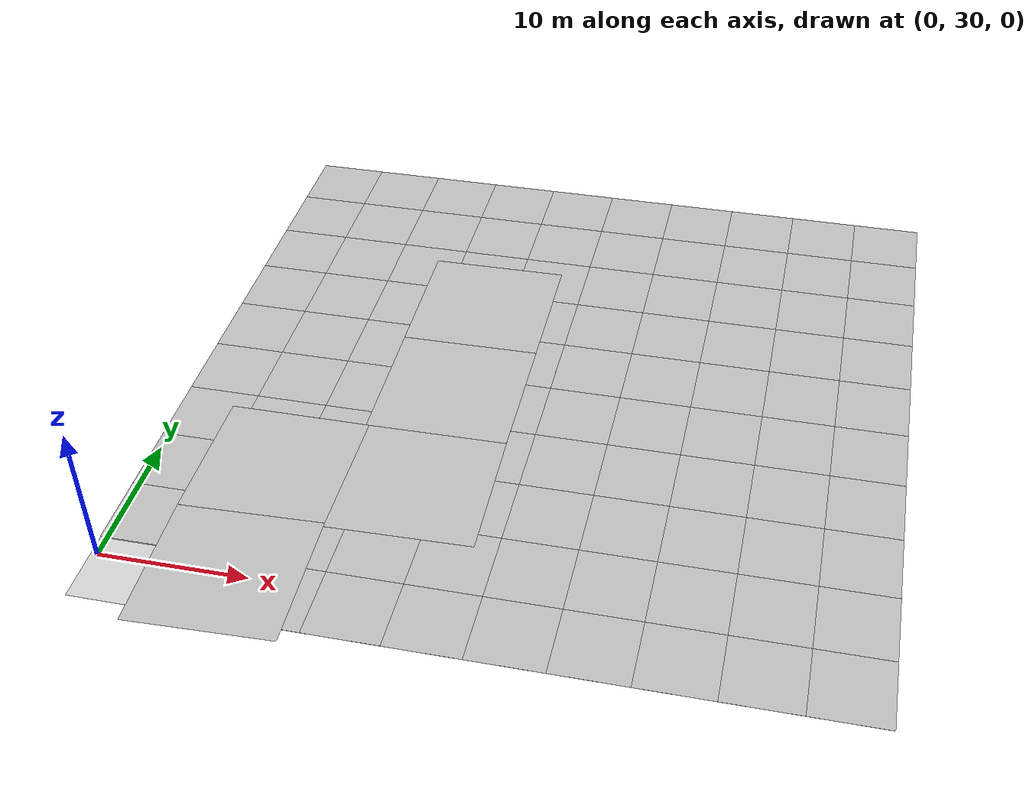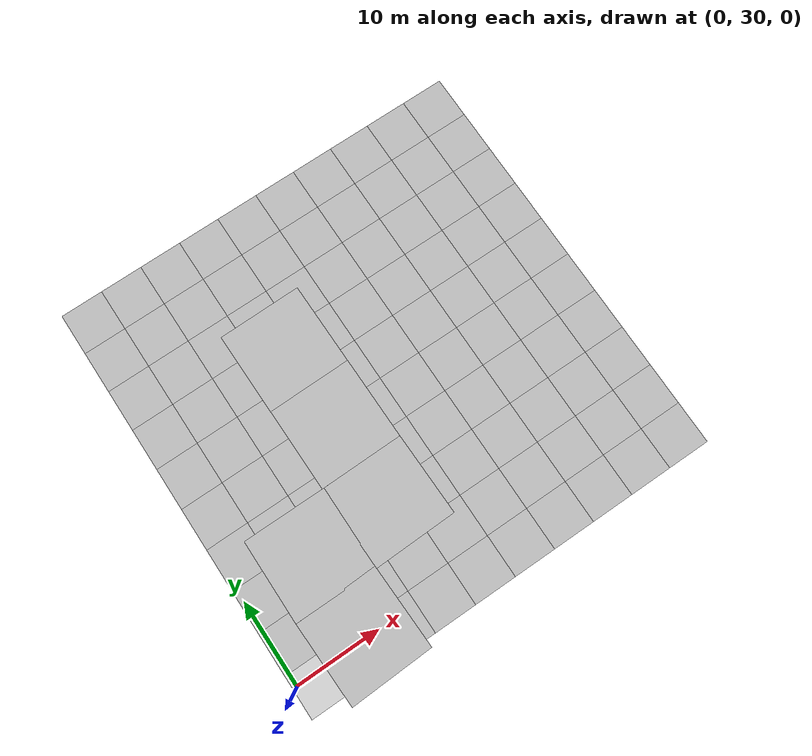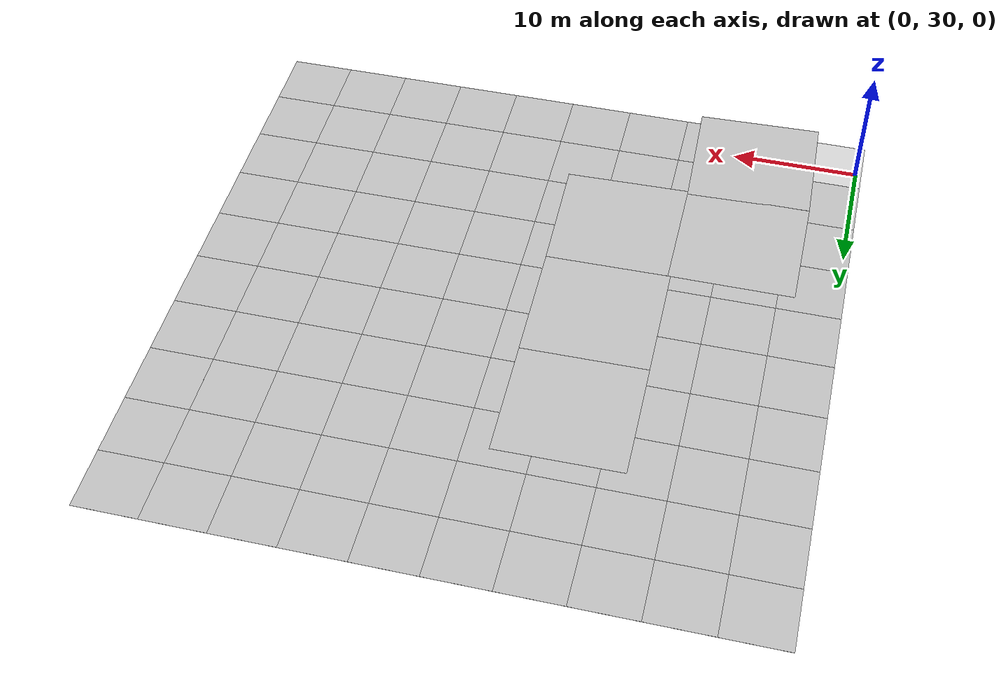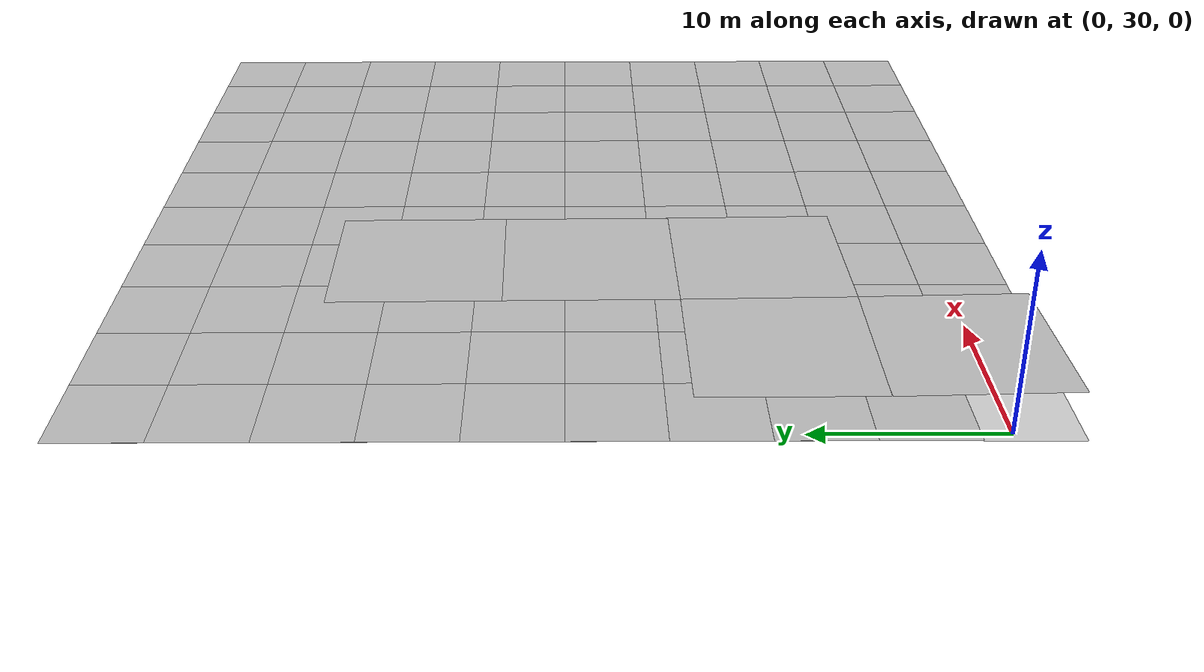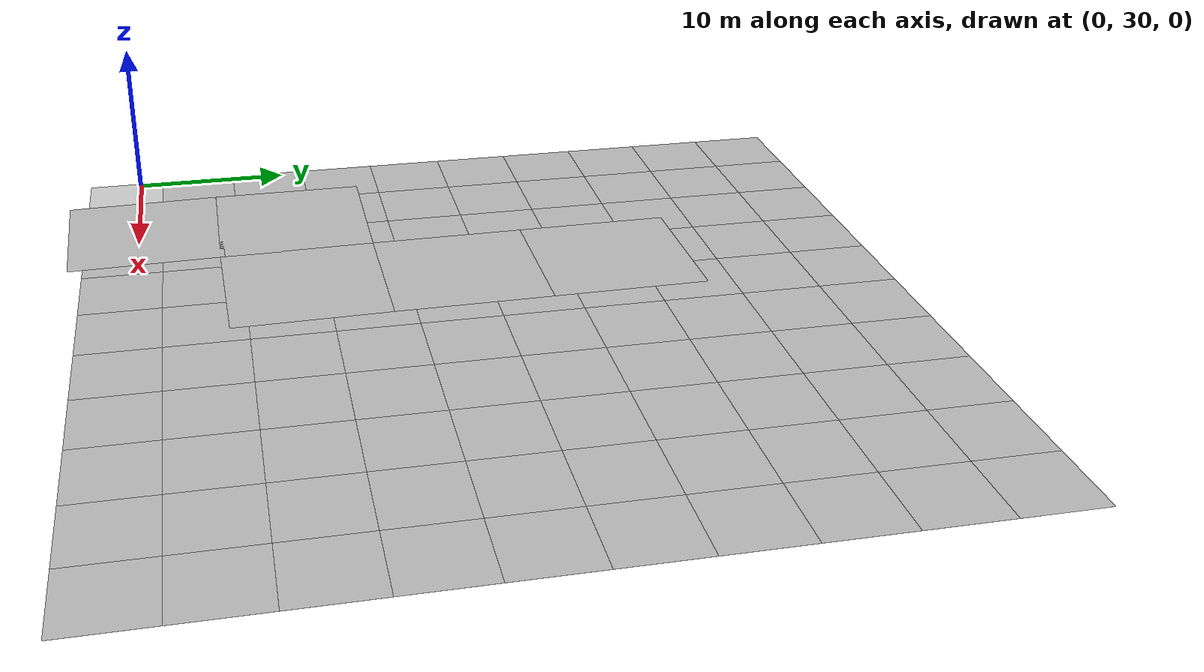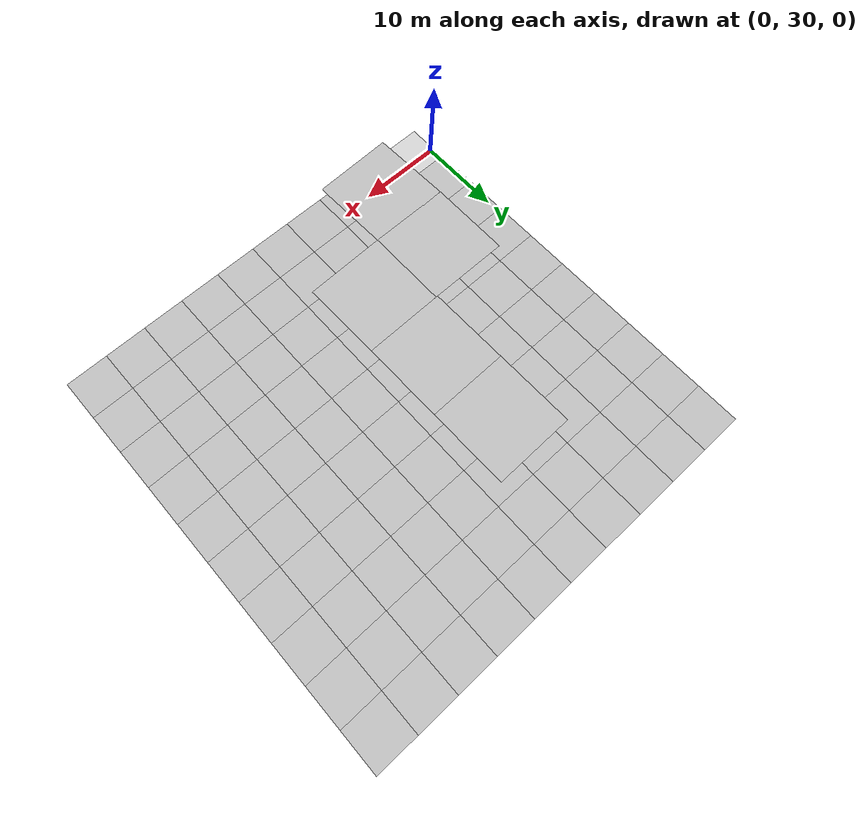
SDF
<sdf version="1.4">
 <world name="default">
  <model name="pavement_plane_4">
   <static>1</static>
   <link name="link">
    <collision name="collision">
     <geometry><plane><normal>0 0 1</normal><size>50 50</size></plane></geometry>
     <surface><friction><ode><mu>100</mu><mu2>50</mu2></ode></friction></surface>
    </collision>
    <visual name="visual_0">
     <pose>-25 -25 0 0 -0 0</pose>
     <cast_shadows>0</cast_shadows>
     <geometry><plane><normal>0 0 1</normal><size>5 5</size></plane></geometry>
     <material>
      <script>
       <uri>model://pavement_plane/materials/scripts</uri>
       <uri>model://pavement_plane/materials/textures</uri>
       <name>vrc/pavement</name>
      </script>
     </material>
    </visual>
    <visual name="visual_1">
     <pose>-20 -25 0 0 -0 0</pose>
     <cast_shadows>0</cast_shadows>
     <geometry><plane><normal>0 0 1</normal><size>5 5</size></plane></geometry>
     <material>
      <script>
       <uri>model://pavement_plane/materials/scripts</uri>
       <uri>model://pavement_plane/materials/textures</uri>
       <name>vrc/pavement</name>
      </script>
     </material>
    </visual>
    <visual name="visual_2">
     <pose>-15 -25 0 0 -0 0</pose>
     <cast_shadows>0</cast_shadows>
     <geometry><plane><normal>0 0 1</normal><size>5 5</size></plane></geometry>
     <material>
      <script>
       <uri>model://pavement_plane/materials/scripts</uri>
       <uri>model://pavement_plane/materials/textures</uri>
       <name>vrc/pavement</name>
      </script>
     </material>
    </visual>
    <visual name="visual_3">
     <pose>-10 -25 0 0 -0 0</pose>
     <cast_shadows>0</cast_shadows>
     <geometry><plane><normal>0 0 1</normal><size>5 5</size></plane></geometry>
     <material>
      <script>
       <uri>model://pavement_plane/materials/scripts</uri>
       <uri>model://pavement_plane/materials/textures</uri>
       <name>vrc/pavement</name>
      </script>
     </material>
    </visual>
    <visual name="visual_4">
     <pose>-5 -25 0 0 -0 0</pose>
     <cast_shadows>0</cast_shadows>
     <geometry><plane><normal>0 0 1</normal><size>5 5</size></plane></geometry>
     <material>
      <script>
       <uri>model://pavement_plane/materials/scripts</uri>
       <uri>model://pavement_plane/materials/textures</uri>
       <name>vrc/pavement</name>
      </script>
     </material>
    </visual>
    <visual name="visual_5">
     <pose>0 -25 0 0 -0 0</pose>
     <cast_shadows>0</cast_shadows>
     <geometry><plane><normal>0 0 1</normal><size>5 5</size></plane></geometry>
     <material>
      <script>
       <uri>model://pavement_plane/materials/scripts</uri>
       <uri>model://pavement_plane/materials/textures</uri>
       <name>vrc/pavement</name>
      </script>
     </material>
    </visual>
    <visual name="visual_6">
     <pose>5 -25 0 0 -0 0</pose>
     <cast_shadows>0</cast_shadows>
     <geometry><plane><normal>0 0 1</normal><size>5 5</size></plane></geometry>
     <material>
      <script>
       <uri>model://pavement_plane/materials/scripts</uri>
       <uri>model://pavement_plane/materials/textures</uri>
       <name>vrc/pavement</name>
      </script>
     </material>
    </visual>
    <visual name="visual_7">
     <pose>10 -25 0 0 -0 0</pose>
     <cast_shadows>0</cast_shadows>
     <geometry><plane><normal>0 0 1</normal><size>5 5</size></plane></geometry>
     <material>
      <script>
       <uri>model://pavement_plane/materials/scripts</uri>
       <uri>model://pavement_plane/materials/textures</uri>
       <name>vrc/pavement</name>
      </script>
     </material>
    </visual>
    <visual name="visual_8">
     <pose>15 -25 0 0 -0 0</pose>
     <cast_shadows>0</cast_shadows>
     <geometry><plane><normal>0 0 1</normal><size>5 5</size></plane></geometry>
     <material>
      <script>
       <uri>model://pavement_plane/materials/scripts</uri>
       <uri>model://pavement_plane/materials/textures</uri>
       <name>vrc/pavement</name>
      </script>
     </material>
    </visual>
    <visual name="visual_9">
     <pose>20 -25 0 0 -0 0</pose>
     <cast_shadows>0</cast_shadows>
     <geometry><plane><normal>0 0 1</normal><size>5 5</size></plane></geometry>
     <material>
      <script>
       <uri>model://pavement_plane/materials/scripts</uri>
       <uri>model://pavement_plane/materials/textures</uri>
       <name>vrc/pavement</name>
      </script>
     </material>
    </visual>
    <visual name="visual_10">
     <pose>-25 -20 0 0 -0 0</pose>
     <cast_shadows>0</cast_shadows>
     <geometry><plane><normal>0 0 1</normal><size>5 5</size></plane></geometry>
     <material>
      <script>
       <uri>model://pavement_plane/materials/scripts</uri>
       <uri>model://pavement_plane/materials/textures</uri>
       <name>vrc/pavement</name>
      </script>
     </material>
    </visual>
    <visual name="visual_11">
     <pose>-20 -20 0 0 -0 0</pose>
     <cast_shadows>0</cast_shadows>
     <geometry><plane><normal>0 0 1</normal><size>5 5</size></plane></geometry>
     <material>
      <script>
       <uri>model://pavement_plane/materials/scripts</uri>
       <uri>model://pavement_plane/materials/textures</uri>
       <name>vrc/pavement</name>
      </script>
     </material>
    </visual>
    <visual name="visual_12">
     <pose>-15 -20 0 0 -0 0</pose>
     <cast_shadows>0</cast_shadows>
     <geometry><plane><normal>0 0 1</normal><size>5 5</size></plane></geometry>
     <material>
      <script>
       <uri>model://pavement_plane/materials/scripts</uri>
       <uri>model://pavement_plane/materials/textures</uri>
       <name>vrc/pavement</name>
      </script>
     </material>
    </visual>
    <visual name="visual_13">
     <pose>-10 -20 0 0 -0 0</pose>
     <cast_shadows>0</cast_shadows>
     <geometry><plane><normal>0 0 1</normal><size>5 5</size></plane></geometry>
     <material>
      <script>
       <uri>model://pavement_plane/materials/scripts</uri>
       <uri>model://pavement_plane/materials/textures</uri>
       <name>vrc/pavement</name>
      </script>
     </material>
    </visual>
    <visual name="visual_14">
     <pose>-5 -20 0 0 -0 0</pose>
     <cast_shadows>0</cast_shadows>
     <geometry><plane><normal>0 0 1</normal><size>5 5</size></plane></geometry>
     <material>
      <script>
       <uri>model://pavement_plane/materials/scripts</uri>
       <uri>model://pavement_plane/materials/textures</uri>
       <name>vrc/pavement</name>
      </script>
     </material>
    </visual>
    <visual name="visual_15">
     <pose>0 -20 0 0 -0 0</pose>
     <cast_shadows>0</cast_shadows>
     <geometry><plane><normal>0 0 1</normal><size>5 5</size></plane></geometry>
     <material>
      <script>
       <uri>model://pavement_plane/materials/scripts</uri>
       <uri>model://pavement_plane/materials/textures</uri>
       <name>vrc/pavement</name>
      </script>
     </material>
    </visual>
    <visual name="visual_16">
     <pose>5 -20 0 0 -0 0</pose>
     <cast_shadows>0</cast_shadows>
     <geometry><plane><normal>0 0 1</normal><size>5 5</size></plane></geometry>
     <material>
      <script>
       <uri>model://pavement_plane/materials/scripts</uri>
       <uri>model://pavement_plane/materials/textures</uri>
       <name>vrc/pavement</name>
      </script>
     </material>
    </visual>
    <visual name="visual_17">
     <pose>10 -20 0 0 -0 0</pose>
     <cast_shadows>0</cast_shadows>
     <geometry><plane><normal>0 0 1</normal><size>5 5</size></plane></geometry>
     <material>
      <script>
       <uri>model://pavement_plane/materials/scripts</uri>
       <uri>model://pavement_plane/materials/textures</uri>
       <name>vrc/pavement</name>
      </script>
     </material>
    </visual>
    <visual name="visual_18">
     <pose>15 -20 0 0 -0 0</pose>
     <cast_shadows>0</cast_shadows>
     <geometry><plane><normal>0 0 1</normal><size>5 5</size></plane></geometry>
     <material>
      <script>
       <uri>model://pavement_plane/materials/scripts</uri>
       <uri>model://pavement_plane/materials/textures</uri>
       <name>vrc/pavement</name>
      </script>
     </material>
    </visual>
    <visual name="visual_19">
     <pose>20 -20 0 0 -0 0</pose>
     <cast_shadows>0</cast_shadows>
     <geometry><plane><normal>0 0 1</normal><size>5 5</size></plane></geometry>
     <material>
      <script>
       <uri>model://pavement_plane/materials/scripts</uri>
       <uri>model://pavement_plane/materials/textures</uri>
       <name>vrc/pavement</name>
      </script>
     </material>
    </visual>
    <visual name="visual_20">
     <pose>-25 -15 0 0 -0 0</pose>
     <cast_shadows>0</cast_shadows>
     <geometry><plane><normal>0 0 1</normal><size>5 5</size></plane></geometry>
     <material>
      <script>
       <uri>model://pavement_plane/materials/scripts</uri>
       <uri>model://pavement_plane/materials/textures</uri>
       <name>vrc/pavement</name>
      </script>
     </material>
    </visual>
    <visual name="visual_21">
     <pose>-20 -15 0 0 -0 0</pose>
     <cast_shadows>0</cast_shadows>
     <geometry><plane><normal>0 0 1</normal><size>5 5</size></plane></geometry>
     <material>
      <script>
       <uri>model://pavement_plane/materials/scripts</uri>
       <uri>model://pavement_plane/materials/textures</uri>
       <name>vrc/pavement</name>
      </script>
     </material>
    </visual>
    <visual name="visual_22">
     <pose>-15 -15 0 0 -0 0</pose>
     <cast_shadows>0</cast_shadows>
     <geometry><plane><normal>0 0 1</normal><size>5 5</size></plane></geometry>
     <material>
      <script>
       <uri>model://pavement_plane/materials/scripts</uri>
       <uri>model://pavement_plane/materials/textures</uri>
       <name>vrc/pavement</name>
      </script>
     </material>
    </visual>
    <visual name="visual_23">
     <pose>-10 -15 0 0 -0 0</pose>
     <cast_shadows>0</cast_shadows>
     <geometry><plane><normal>0 0 1</normal><size>5 5</size></plane></geometry>
     <material>
      <script>
       <uri>model://pavement_plane/materials/scripts</uri>
       <uri>model://pavement_plane/materials/textures</uri>
       <name>vrc/pavement</name>
      </script>
     </material>
    </visual>
    <visual name="visual_24">
     <pose>-5 -15 0 0 -0 0</pose>
     <cast_shadows>0</cast_shadows>
     <geometry><plane><normal>0 0 1</normal><size>5 5</size></plane></geometry>
     <material>
      <script>
       <uri>model://pavement_plane/materials/scripts</uri>
       <uri>model://pavement_plane/materials/textures</uri>
       <name>vrc/pavement</name>
      </script>
     </material>
    </visual>
    <visual name="visual_25">
     <pose>0 -15 0 0 -0 0</pose>
     <cast_shadows>0</cast_shadows>
     <geometry><plane><normal>0 0 1</normal><size>5 5</size></plane></geometry>
     <material>
      <script>
       <uri>model://pavement_plane/materials/scripts</uri>
       <uri>model://pavement_plane/materials/textures</uri>
       <name>vrc/pavement</name>
      </script>
     </material>
    </visual>
    <visual name="visual_26">
     <pose>5 -15 0 0 -0 0</pose>
     <cast_shadows>0</cast_shadows>
     <geometry><plane><normal>0 0 1</normal><size>5 5</size></plane></geometry>
     <material>
      <script>
       <uri>model://pavement_plane/materials/scripts</uri>
       <uri>model://pavement_plane/materials/textures</uri>
       <name>vrc/pavement</name>
      </script>
     </material>
    </visual>
    <visual name="visual_27">
     <pose>10 -15 0 0 -0 0</pose>
     <cast_shadows>0</cast_shadows>
     <geometry><plane><normal>0 0 1</normal><size>5 5</size></plane></geometry>
     <material>
      <script>
       <uri>model://pavement_plane/materials/scripts</uri>
       <uri>model://pavement_plane/materials/textures</uri>
       <name>vrc/pavement</name>
      </script>
     </material>
    </visual>
    <visual name="visual_28">
     <pose>15 -15 0 0 -0 0</pose>
     <cast_shadows>0</cast_shadows>
     <geometry><plane><normal>0 0 1</normal><size>5 5</size></plane></geometry>
     <material>
      <script>
       <uri>model://pavement_plane/materials/scripts</uri>
       <uri>model://pavement_plane/materials/textures</uri>
       <name>vrc/pavement</name>
      </script>
     </material>
    </visual>
    <visual name="visual_29">
     <pose>20 -15 0 0 -0 0</pose>
     <cast_shadows>0</cast_shadows>
     <geometry><plane><normal>0 0 1</normal><size>5 5</size></plane></geometry>
     <material>
      <script>
       <uri>model://pavement_plane/materials/scripts</uri>
       <uri>model://pavement_plane/materials/textures</uri>
       <name>vrc/pavement</name>
      </script>
     </material>
    </visual>
    <visual name="visual_30">
     <pose>-25 -10 0 0 -0 0</pose>
     <cast_shadows>0</cast_shadows>
     <geometry><plane><normal>0 0 1</normal><size>5 5</size></plane></geometry>
     <material>
      <script>
       <uri>model://pavement_plane/materials/scripts</uri>
       <uri>model://pavement_plane/materials/textures</uri>
       <name>vrc/pavement</name>
      </script>
     </material>
    </visual>
    <visual name="visual_31">
     <pose>-20 -10 0 0 -0 0</pose>
     <cast_shadows>0</cast_shadows>
     <geometry><plane><normal>0 0 1</normal><size>5 5</size></plane></geometry>
     <material>
      <script>
       <uri>model://pavement_plane/materials/scripts</uri>
       <uri>model://pavement_plane/materials/textures</uri>
       <name>vrc/pavement</name>
      </script>
     </material>
    </visual>
    <visual name="visual_32">
     <pose>-15 -10 0 0 -0 0</pose>
     <cast_shadows>0</cast_shadows>
     <geometry><plane><normal>0 0 1</normal><size>5 5</size></plane></geometry>
     <material>
      <script>
       <uri>model://pavement_plane/materials/scripts</uri>
       <uri>model://pavement_plane/materials/textures</uri>
       <name>vrc/pavement</name>
      </script>
     </material>
    </visual>
    <visual name="visual_33">
     <pose>-10 -10 0 0 -0 0</pose>
     <cast_shadows>0</cast_shadows>
     <geometry><plane><normal>0 0 1</normal><size>5 5</size></plane></geometry>
     <material>
      <script>
       <uri>model://pavement_plane/materials/scripts</uri>
       <uri>model://pavement_plane/materials/textures</uri>
       <name>vrc/pavement</name>
      </script>
     </material>
    </visual>
    <visual name="visual_34">
     <pose>-5 -10 0 0 -0 0</pose>
     <cast_shadows>0</cast_shadows>
     <geometry><plane><normal>0 0 1</normal><size>5 5</size></plane></geometry>
     <material>
      <script>
       <uri>model://pavement_plane/materials/scripts</uri>
       <uri>model://pavement_plane/materials/textures</uri>
       <name>vrc/pavement</name>
      </script>
     </material>
    </visual>
    <visual name="visual_35">
     <pose>0 -10 0 0 -0 0</pose>
     <cast_shadows>0</cast_shadows>
     <geometry><plane><normal>0 0 1</normal><size>5 5</size></plane></geometry>
     <material>
      <script>
       <uri>model://pavement_plane/materials/scripts</uri>
       <uri>model://pavement_plane/materials/textures</uri>
       <name>vrc/pavement</name>
      </script>
     </material>
    </visual>
    <visual name="visual_36">
     <pose>5 -10 0 0 -0 0</pose>
     <cast_shadows>0</cast_shadows>
     <geometry><plane><normal>0 0 1</normal><size>5 5</size></plane></geometry>
     <material>
      <script>
       <uri>model://pavement_plane/materials/scripts</uri>
       <uri>model://pavement_plane/materials/textures</uri>
       <name>vrc/pavement</name>
      </script>
     </material>
    </visual>
    <visual name="visual_37">
     <pose>10 -10 0 0 -0 0</pose>
     <cast_shadows>0</cast_shadows>
     <geometry><plane><normal>0 0 1</normal><size>5 5</size></plane></geometry>
     <material>
      <script>
       <uri>model://pavement_plane/materials/scripts</uri>
       <uri>model://pavement_plane/materials/textures</uri>
       <name>vrc/pavement</name>
      </script>
     </material>
    </visual>
    <visual name="visual_38">
     <pose>15 -10 0 0 -0 0</pose>
     <cast_shadows>0</cast_shadows>
     <geometry><plane><normal>0 0 1</normal><size>5 5</size></plane></geometry>
     <material>
      <script>
       <uri>model://pavement_plane/materials/scripts</uri>
       <uri>model://pavement_plane/materials/textures</uri>
       <name>vrc/pavement</name>
      </script>
     </material>
    </visual>
    <visual name="visual_39">
     <pose>20 -10 0 0 -0 0</pose>
     <cast_shadows>0</cast_shadows>
     <geometry><plane><normal>0 0 1</normal><size>5 5</size></plane></geometry>
     <material>
      <script>
       <uri>model://pavement_plane/materials/scripts</uri>
       <uri>model://pavement_plane/materials/textures</uri>
       <name>vrc/pavement</name>
      </script>
     </material>
    </visual>
    <visual name="visual_40">
     <pose>-25 -5 0 0 -0 0</pose>
     <cast_shadows>0</cast_shadows>
     <geometry><plane><normal>0 0 1</normal><size>5 5</size></plane></geometry>
     <material>
      <script>
       <uri>model://pavement_plane/materials/scripts</uri>
       <uri>model://pavement_plane/materials/textures</uri>
       <name>vrc/pavement</name>
      </script>
     </material>
    </visual>
    <visual name="visual_41">
     <pose>-20 -5 0 0 -0 0</pose>
     <cast_shadows>0</cast_shadows>
     <geometry><plane><normal>0 0 1</normal><size>5 5</size></plane></geometry>
     <material>
      <script>
       <uri>model://pavement_plane/materials/scripts</uri>
       <uri>model://pavement_plane/materials/textures</uri>
       <name>vrc/pavement</name>
      </script>
     </material>
    </visual>
    <visual name="visual_42">
     <pose>-15 -5 0 0 -0 0</pose>
     <cast_shadows>0</cast_shadows>
     <geometry><plane><normal>0 0 1</normal><size>5 5</size></plane></geometry>
     <material>
      <script>
       <uri>model://pavement_plane/materials/scripts</uri>
       <uri>model://pavement_plane/materials/textures</uri>
       <name>vrc/pavement</name>
      </script>
     </material>
    </visual>
    <visual name="visual_43">
     <pose>-10 -5 0 0 -0 0</pose>
     <cast_shadows>0</cast_shadows>
     <geometry><plane><normal>0 0 1</normal><size>5 5</size></plane></geometry>
     <material>
      <script>
       <uri>model://pavement_plane/materials/scripts</uri>
       <uri>model://pavement_plane/materials/textures</uri>
       <name>vrc/pavement</name>
      </script>
     </material>
    </visual>
    <visual name="visual_44">
     <pose>-5 -5 0 0 -0 0</pose>
     <cast_shadows>0</cast_shadows>
     <geometry><plane><normal>0 0 1</normal><size>5 5</size></plane></geometry>
     <material>
      <script>
       <uri>model://pavement_plane/materials/scripts</uri>
       <uri>model://pavement_plane/materials/textures</uri>
       <name>vrc/pavement</name>
      </script>
     </material>
    </visual>
    <visual name="visual_45">
     <pose>0 -5 0 0 -0 0</pose>
     <cast_shadows>0</cast_shadows>
     <geometry><plane><normal>0 0 1</normal><size>5 5</size></plane></geometry>
     <material>
      <script>
       <uri>model://pavement_plane/materials/scripts</uri>
       <uri>model://pavement_plane/materials/textures</uri>
       <name>vrc/pavement</name>
      </script>
     </material>
    </visual>
    <visual name="visual_46">
     <pose>5 -5 0 0 -0 0</pose>
     <cast_shadows>0</cast_shadows>
     <geometry><plane><normal>0 0 1</normal><size>5 5</size></plane></geometry>
     <material>
      <script>
       <uri>model://pavement_plane/materials/scripts</uri>
       <uri>model://pavement_plane/materials/textures</uri>
       <name>vrc/pavement</name>
      </script>
     </material>
    </visual>
    <visual name="visual_47">
     <pose>10 -5 0 0 -0 0</pose>
     <cast_shadows>0</cast_shadows>
     <geometry><plane><normal>0 0 1</normal><size>5 5</size></plane></geometry>
     <material>
      <script>
       <uri>model://pavement_plane/materials/scripts</uri>
       <uri>model://pavement_plane/materials/textures</uri>
       <name>vrc/pavement</name>
      </script>
     </material>
    </visual>
    <visual name="visual_48">
     <pose>15 -5 0 0 -0 0</pose>
     <cast_shadows>0</cast_shadows>
     <geometry><plane><normal>0 0 1</normal><size>5 5</size></plane></geometry>
     <material>
      <script>
       <uri>model://pavement_plane/materials/scripts</uri>
       <uri>model://pavement_plane/materials/textures</uri>
       <name>vrc/pavement</name>
      </script>
     </material>
    </visual>
    <visual name="visual_49">
     <pose>20 -5 0 0 -0 0</pose>
     <cast_shadows>0</cast_shadows>
     <geometry><plane><normal>0 0 1</normal><size>5 5</size></plane></geometry>
     <material>
      <script>
       <uri>model://pavement_plane/materials/scripts</uri>
       <uri>model://pavement_plane/materials/textures</uri>
       <name>vrc/pavement</name>
      </script>
     </material>
    </visual>
    <visual name="visual_50">
     <pose>-25 0 0 0 -0 0</pose>
     <cast_shadows>0</cast_shadows>
     <geometry><plane><normal>0 0 1</normal><size>5 5</size></plane></geometry>
     <material>
      <script>
       <uri>model://pavement_plane/materials/scripts</uri>
       <uri>model://pavement_plane/materials/textures</uri>
       <name>vrc/pavement</name>
      </script>
     </material>
    </visual>
    <visual name="visual_51">
     <pose>-20 0 0 0 -0 0</pose>
     <cast_shadows>0</cast_shadows>
     <geometry><plane><normal>0 0 1</normal><size>5 5</size></plane></geometry>
     <material>
      <script>
       <uri>model://pavement_plane/materials/scripts</uri>
       <uri>model://pavement_plane/materials/textures</uri>
       <name>vrc/pavement</name>
      </script>
     </material>
    </visual>
    <visual name="visual_52">
     <pose>-15 0 0 0 -0 0</pose>
     <cast_shadows>0</cast_shadows>
     <geometry><plane><normal>0 0 1</normal><size>5 5</size></plane></geometry>
     <material>
      <script>
       <uri>model://pavement_plane/materials/scripts</uri>
       <uri>model://pavement_plane/materials/textures</uri>
       <name>vrc/pavement</name>
      </script>
     </material>
    </visual>
    <visual name="visual_53">
     <pose>-10 0 0 0 -0 0</pose>
     <cast_shadows>0</cast_shadows>
     <geometry><plane><normal>0 0 1</normal><size>5 5</size></plane></geometry>
     <material>
      <script>
       <uri>model://pavement_plane/materials/scripts</uri>
       <uri>model://pavement_plane/materials/textures</uri>
       <name>vrc/pavement</name>
      </script>
     </material>
    </visual>
    <visual name="visual_54">
     <pose>-5 0 0 0 -0 0</pose>
     <cast_shadows>0</cast_shadows>
     <geometry><plane><normal>0 0 1</normal><size>5 5</size></plane></geometry>
     <material>
      <script>
       <uri>model://pavement_plane/materials/scripts</uri>
       <uri>model://pavement_plane/materials/textures</uri>
       <name>vrc/pavement</name>
      </script>
     </material>
    </visual>
    <visual name="visual_55">
     <cast_shadows>0</cast_shadows>
     <geometry><plane><normal>0 0 1</normal><size>5 5</size></plane></geometry>
     <material>
      <script>
       <uri>model://pavement_plane/materials/scripts</uri>
       <uri>model://pavement_plane/materials/textures</uri>
       <name>vrc/pavement</name>
      </script>
     </material>
    </visual>
    <visual name="visual_56">
     <pose>5 0 0 0 -0 0</pose>
     <cast_shadows>0</cast_shadows>
     <geometry><plane><normal>0 0 1</normal><size>5 5</size></plane></geometry>
     <material>
      <script>
       <uri>model://pavement_plane/materials/scripts</uri>
       <uri>model://pavement_plane/materials/textures</uri>
       <name>vrc/pavement</name>
      </script>
     </material>
    </visual>
    <visual name="visual_57">
     <pose>10 0 0 0 -0 0</pose>
     <cast_shadows>0</cast_shadows>
     <geometry><plane><normal>0 0 1</normal><size>5 5</size></plane></geometry>
     <material>
      <script>
       <uri>model://pavement_plane/materials/scripts</uri>
       <uri>model://pavement_plane/materials/textures</uri>
       <name>vrc/pavement</name>
      </script>
     </material>
    </visual>
    <visual name="visual_58">
     <pose>15 0 0 0 -0 0</pose>
     <cast_shadows>0</cast_shadows>
     <geometry><plane><normal>0 0 1</normal><size>5 5</size></plane></geometry>
     <material>
      <script>
       <uri>model://pavement_plane/materials/scripts</uri>
       <uri>model://pavement_plane/materials/textures</uri>
       <name>vrc/pavement</name>
      </script>
     </material>
    </visual>
    <visual name="visual_59">
     <pose>20 0 0 0 -0 0</pose>
     <cast_shadows>0</cast_shadows>
     <geometry><plane><normal>0 0 1</normal><size>5 5</size></plane></geometry>
     <material>
      <script>
       <uri>model://pavement_plane/materials/scripts</uri>
       <uri>model://pavement_plane/materials/textures</uri>
       <name>vrc/pavement</name>
      </script>
     </material>
    </visual>
    <visual name="visual_60">
     <pose>-25 5 0 0 -0 0</pose>
     <cast_shadows>0</cast_shadows>
     <geometry><plane><normal>0 0 1</normal><size>5 5</size></plane></geometry>
     <material>
      <script>
       <uri>model://pavement_plane/materials/scripts</uri>
       <uri>model://pavement_plane/materials/textures</uri>
       <name>vrc/pavement</name>
      </script>
     </material>
    </visual>
    <visual name="visual_61">
     <pose>-20 5 0 0 -0 0</pose>
     <cast_shadows>0</cast_shadows>
     <geometry><plane><normal>0 0 1</normal><size>5 5</size></plane></geometry>
     <material>
      <script>
       <uri>model://pavement_plane/materials/scripts</uri>
       <uri>model://pavement_plane/materials/textures</uri>
       <name>vrc/pavement</name>
      </script>
     </material>
    </visual>
    <visual name="visual_62">
     <pose>-15 5 0 0 -0 0</pose>
     <cast_shadows>0</cast_shadows>
     <geometry><plane><normal>0 0 1</normal><size>5 5</size></plane></geometry>
     <material>
      <script>
       <uri>model://pavement_plane/materials/scripts</uri>
       <uri>model://pavement_plane/materials/textures</uri>
       <name>vrc/pavement</name>
      </script>
     </material>
    </visual>
    <visual name="visual_63">
     <pose>-10 5 0 0 -0 0</pose>
     <cast_shadows>0</cast_shadows>
     <geometry><plane><normal>0 0 1</normal><size>5 5</size></plane></geometry>
     <material>
      <script>
       <uri>model://pavement_plane/materials/scripts</uri>
       <uri>model://pavement_plane/materials/textures</uri>
       <name>vrc/pavement</name>
      </script>
     </material>
    </visual>
    <visual name="visual_64">
     <pose>-5 5 0 0 -0 0</pose>
     <cast_shadows>0</cast_shadows>
     <geometry><plane><normal>0 0 1</normal><size>5 5</size></plane></geometry>
     <material>
      <script>
       <uri>model://pavement_plane/materials/scripts</uri>
       <uri>model://pavement_plane/materials/textures</uri>
       <name>vrc/pavement</name>
      </script>
     </material>
    </visual>
    <visual name="visual_65">
     <pose>0 5 0 0 -0 0</pose>
     <cast_shadows>0</cast_shadows>
     <geometry><plane><normal>0 0 1</normal><size>5 5</size></plane></geometry>
     <material>
      <script>
       <uri>model://pavement_plane/materials/scripts</uri>
       <uri>model://pavement_plane/materials/textures</uri>
       <name>vrc/pavement</name>
      </script>
     </material>
    </visual>
    <visual name="visual_66">
     <pose>5 5 0 0 -0 0</pose>
     <cast_shadows>0</cast_shadows>
     <geometry><plane><normal>0 0 1</normal><size>5 5</size></plane></geometry>
     <material>
      <script>
       <uri>model://pavement_plane/materials/scripts</uri>
       <uri>model://pavement_plane/materials/textures</uri>
       <name>vrc/pavement</name>
      </script>
     </material>
    </visual>
    <visual name="visual_67">
     <pose>10 5 0 0 -0 0</pose>
     <cast_shadows>0</cast_shadows>
     <geometry><plane><normal>0 0 1</normal><size>5 5</size></plane></geometry>
     <material>
      <script>
       <uri>model://pavement_plane/materials/scripts</uri>
       <uri>model://pavement_plane/materials/textures</uri>
       <name>vrc/pavement</name>
      </script>
     </material>
    </visual>
    <visual name="visual_68">
     <pose>15 5 0 0 -0 0</pose>
     <cast_shadows>0</cast_shadows>
     <geometry><plane><normal>0 0 1</normal><size>5 5</size></plane></geometry>
     <material>
      <script>
       <uri>model://pavement_plane/materials/scripts</uri>
       <uri>model://pavement_plane/materials/textures</uri>
       <name>vrc/pavement</name>
      </script>
     </material>
    </visual>
    <visual name="visual_69">
     <pose>20 5 0 0 -0 0</pose>
     <cast_shadows>0</cast_shadows>
     <geometry><plane><normal>0 0 1</normal><size>5 5</size></plane></geometry>
     <material>
      <script>
       <uri>model://pavement_plane/materials/scripts</uri>
       <uri>model://pavement_plane/materials/textures</uri>
       <name>vrc/pavement</name>
      </script>
     </material>
    </visual>
    <visual name="visual_70">
     <pose>-25 10 0 0 -0 0</pose>
     <cast_shadows>0</cast_shadows>
     <geometry><plane><normal>0 0 1</normal><size>5 5</size></plane></geometry>
     <material>
      <script>
       <uri>model://pavement_plane/materials/scripts</uri>
       <uri>model://pavement_plane/materials/textures</uri>
       <name>vrc/pavement</name>
      </script>
     </material>
    </visual>
    <visual name="visual_71">
     <pose>-20 10 0 0 -0 0</pose>
     <cast_shadows>0</cast_shadows>
     <geometry><plane><normal>0 0 1</normal><size>5 5</size></plane></geometry>
     <material>
      <script>
       <uri>model://pavement_plane/materials/scripts</uri>
       <uri>model://pavement_plane/materials/textures</uri>
       <name>vrc/pavement</name>
      </script>
     </material>
    </visual>
    <visual name="visual_72">
     <pose>-15 10 0 0 -0 0</pose>
     <cast_shadows>0</cast_shadows>
     <geometry><plane><normal>0 0 1</normal><size>5 5</size></plane></geometry>
     <material>
      <script>
       <uri>model://pavement_plane/materials/scripts</uri>
       <uri>model://pavement_plane/materials/textures</uri>
       <name>vrc/pavement</name>
      </script>
     </material>
    </visual>
    <visual name="visual_73">
     <pose>-10 10 0 0 -0 0</pose>
     <cast_shadows>0</cast_shadows>
     <geometry><plane><normal>0 0 1</normal><size>5 5</size></plane></geometry>
     <material>
      <script>
       <uri>model://pavement_plane/materials/scripts</uri>
       <uri>model://pavement_plane/materials/textures</uri>
       <name>vrc/pavement</name>
      </script>
     </material>
    </visual>
    <visual name="visual_74">
     <pose>-5 10 0 0 -0 0</pose>
     <cast_shadows>0</cast_shadows>
     <geometry><plane><normal>0 0 1</normal><size>5 5</size></plane></geometry>
     <material>
      <script>
       <uri>model://pavement_plane/materials/scripts</uri>
       <uri>model://pavement_plane/materials/textures</uri>
       <name>vrc/pavement</name>
      </script>
     </material>
    </visual>
    <visual name="visual_75">
     <pose>0 10 0 0 -0 0</pose>
     <cast_shadows>0</cast_shadows>
     <geometry><plane><normal>0 0 1</normal><size>5 5</size></plane></geometry>
     <material>
      <script>
       <uri>model://pavement_plane/materials/scripts</uri>
       <uri>model://pavement_plane/materials/textures</uri>
       <name>vrc/pavement</name>
      </script>
     </material>
    </visual>
    <visual name="visual_76">
     <pose>5 10 0 0 -0 0</pose>
     <cast_shadows>0</cast_shadows>
     <geometry><plane><normal>0 0 1</normal><size>5 5</size></plane></geometry>
     <material>
      <script>
       <uri>model://pavement_plane/materials/scripts</uri>
       <uri>model://pavement_plane/materials/textures</uri>
       <name>vrc/pavement</name>
      </script>
     </material>
    </visual>
    <visual name="visual_77">
     <pose>10 10 0 0 -0 0</pose>
     <cast_shadows>0</cast_shadows>
     <geometry><plane><normal>0 0 1</normal><size>5 5</size></plane></geometry>
     <material>
      <script>
       <uri>model://pavement_plane/materials/scripts</uri>
       <uri>model://pavement_plane/materials/textures</uri>
       <name>vrc/pavement</name>
      </script>
     </material>
    </visual>
    <visual name="visual_78">
     <pose>15 10 0 0 -0 0</pose>
     <cast_shadows>0</cast_shadows>
     <geometry><plane><normal>0 0 1</normal><size>5 5</size></plane></geometry>
     <material>
      <script>
       <uri>model://pavement_plane/materials/scripts</uri>
       <uri>model://pavement_plane/materials/textures</uri>
       <name>vrc/pavement</name>
      </script>
     </material>
    </visual>
    <visual name="visual_79">
     <pose>20 10 0 0 -0 0</pose>
     <cast_shadows>0</cast_shadows>
     <geometry><plane><normal>0 0 1</normal><size>5 5</size></plane></geometry>
     <material>
      <script>
       <uri>model://pavement_plane/materials/scripts</uri>
       <uri>model://pavement_plane/materials/textures</uri>
       <name>vrc/pavement</name>
      </script>
     </material>
    </visual>
    <visual name="visual_80">
     <pose>-25 15 0 0 -0 0</pose>
     <cast_shadows>0</cast_shadows>
     <geometry><plane><normal>0 0 1</normal><size>5 5</size></plane></geometry>
     <material>
      <script>
       <uri>model://pavement_plane/materials/scripts</uri>
       <uri>model://pavement_plane/materials/textures</uri>
       <name>vrc/pavement</name>
      </script>
     </material>
    </visual>
    <visual name="visual_81">
     <pose>-20 15 0 0 -0 0</pose>
     <cast_shadows>0</cast_shadows>
     <geometry><plane><normal>0 0 1</normal><size>5 5</size></plane></geometry>
     <material>
      <script>
       <uri>model://pavement_plane/materials/scripts</uri>
       <uri>model://pavement_plane/materials/textures</uri>
       <name>vrc/pavement</name>
      </script>
     </material>
    </visual>
    <visual name="visual_82">
     <pose>-15 15 0 0 -0 0</pose>
     <cast_shadows>0</cast_shadows>
     <geometry><plane><normal>0 0 1</normal><size>5 5</size></plane></geometry>
     <material>
      <script>
       <uri>model://pavement_plane/materials/scripts</uri>
       <uri>model://pavement_plane/materials/textures</uri>
       <name>vrc/pavement</name>
      </script>
     </material>
    </visual>
    <visual name="visual_83">
     <pose>-10 15 0 0 -0 0</pose>
     <cast_shadows>0</cast_shadows>
     <geometry><plane><normal>0 0 1</normal><size>5 5</size></plane></geometry>
     <material>
      <script>
       <uri>model://pavement_plane/materials/scripts</uri>
       <uri>model://pavement_plane/materials/textures</uri>
       <name>vrc/pavement</name>
      </script>
     </material>
    </visual>
    <visual name="visual_84">
     <pose>-5 15 0 0 -0 0</pose>
     <cast_shadows>0</cast_shadows>
     <geometry><plane><normal>0 0 1</normal><size>5 5</size></plane></geometry>
     <material>
      <script>
       <uri>model://pavement_plane/materials/scripts</uri>
       <uri>model://pavement_plane/materials/textures</uri>
       <name>vrc/pavement</name>
      </script>
     </material>
    </visual>
    <visual name="visual_85">
     <pose>0 15 0 0 -0 0</pose>
     <cast_shadows>0</cast_shadows>
     <geometry><plane><normal>0 0 1</normal><size>5 5</size></plane></geometry>
     <material>
      <script>
       <uri>model://pavement_plane/materials/scripts</uri>
       <uri>model://pavement_plane/materials/textures</uri>
       <name>vrc/pavement</name>
      </script>
     </material>
    </visual>
    <visual name="visual_86">
     <pose>5 15 0 0 -0 0</pose>
     <cast_shadows>0</cast_shadows>
     <geometry><plane><normal>0 0 1</normal><size>5 5</size></plane></geometry>
     <material>
      <script>
       <uri>model://pavement_plane/materials/scripts</uri>
       <uri>model://pavement_plane/materials/textures</uri>
       <name>vrc/pavement</name>
      </script>
     </material>
    </visual>
    <visual name="visual_87">
     <pose>10 15 0 0 -0 0</pose>
     <cast_shadows>0</cast_shadows>
     <geometry><plane><normal>0 0 1</normal><size>5 5</size></plane></geometry>
     <material>
      <script>
       <uri>model://pavement_plane/materials/scripts</uri>
       <uri>model://pavement_plane/materials/textures</uri>
       <name>vrc/pavement</name>
      </script>
     </material>
    </visual>
    <visual name="visual_88">
     <pose>15 15 0 0 -0 0</pose>
     <cast_shadows>0</cast_shadows>
     <geometry><plane><normal>0 0 1</normal><size>5 5</size></plane></geometry>
     <material>
      <script>
       <uri>model://pavement_plane/materials/scripts</uri>
       <uri>model://pavement_plane/materials/textures</uri>
       <name>vrc/pavement</name>
      </script>
     </material>
    </visual>
    <visual name="visual_89">
     <pose>20 15 0 0 -0 0</pose>
     <cast_shadows>0</cast_shadows>
     <geometry><plane><normal>0 0 1</normal><size>5 5</size></plane></geometry>
     <material>
      <script>
       <uri>model://pavement_plane/materials/scripts</uri>
       <uri>model://pavement_plane/materials/textures</uri>
       <name>vrc/pavement</name>
      </script>
     </material>
    </visual>
    <visual name="visual_90">
     <pose>-25 20 0 0 -0 0</pose>
     <cast_shadows>0</cast_shadows>
     <geometry><plane><normal>0 0 1</normal><size>5 5</size></plane></geometry>
     <material>
      <script>
       <uri>model://pavement_plane/materials/scripts</uri>
       <uri>model://pavement_plane/materials/textures</uri>
       <name>vrc/pavement</name>
      </script>
     </material>
    </visual>
    <visual name="visual_91">
     <pose>-20 20 0 0 -0 0</pose>
     <cast_shadows>0</cast_shadows>
     <geometry><plane><normal>0 0 1</normal><size>5 5</size></plane></geometry>
     <material>
      <script>
       <uri>model://pavement_plane/materials/scripts</uri>
       <uri>model://pavement_plane/materials/textures</uri>
       <name>vrc/pavement</name>
      </script>
     </material>
    </visual>
    <visual name="visual_92">
     <pose>-15 20 0 0 -0 0</pose>
     <cast_shadows>0</cast_shadows>
     <geometry><plane><normal>0 0 1</normal><size>5 5</size></plane></geometry>
     <material>
      <script>
       <uri>model://pavement_plane/materials/scripts</uri>
       <uri>model://pavement_plane/materials/textures</uri>
       <name>vrc/pavement</name>
      </script>
     </material>
    </visual>
    <visual name="visual_93">
     <pose>-10 20 0 0 -0 0</pose>
     <cast_shadows>0</cast_shadows>
     <geometry><plane><normal>0 0 1</normal><size>5 5</size></plane></geometry>
     <material>
      <script>
       <uri>model://pavement_plane/materials/scripts</uri>
       <uri>model://pavement_plane/materials/textures</uri>
       <name>vrc/pavement</name>
      </script>
     </material>
    </visual>
    <visual name="visual_94">
     <pose>-5 20 0 0 -0 0</pose>
     <cast_shadows>0</cast_shadows>
     <geometry><plane><normal>0 0 1</normal><size>5 5</size></plane></geometry>
     <material>
      <script>
       <uri>model://pavement_plane/materials/scripts</uri>
       <uri>model://pavement_plane/materials/textures</uri>
       <name>vrc/pavement</name>
      </script>
     </material>
    </visual>
    <visual name="visual_95">
     <pose>0 20 0 0 -0 0</pose>
     <cast_shadows>0</cast_shadows>
     <geometry><plane><normal>0 0 1</normal><size>5 5</size></plane></geometry>
     <material>
      <script>
       <uri>model://pavement_plane/materials/scripts</uri>
       <uri>model://pavement_plane/materials/textures</uri>
       <name>vrc/pavement</name>
      </script>
     </material>
    </visual>
    <visual name="visual_96">
     <pose>5 20 0 0 -0 0</pose>
     <cast_shadows>0</cast_shadows>
     <geometry><plane><normal>0 0 1</normal><size>5 5</size></plane></geometry>
     <material>
      <script>
       <uri>model://pavement_plane/materials/scripts</uri>
       <uri>model://pavement_plane/materials/textures</uri>
       <name>vrc/pavement</name>
      </script>
     </material>
    </visual>
    <visual name="visual_97">
     <pose>10 20 0 0 -0 0</pose>
     <cast_shadows>0</cast_shadows>
     <geometry><plane><normal>0 0 1</normal><size>5 5</size></plane></geometry>
     <material>
      <script>
       <uri>model://pavement_plane/materials/scripts</uri>
       <uri>model://pavement_plane/materials/textures</uri>
       <name>vrc/pavement</name>
      </script>
     </material>
    </visual>
    <visual name="visual_98">
     <pose>15 20 0 0 -0 0</pose>
     <cast_shadows>0</cast_shadows>
     <geometry><plane><normal>0 0 1</normal><size>5 5</size></plane></geometry>
     <material>
      <script>
       <uri>model://pavement_plane/materials/scripts</uri>
       <uri>model://pavement_plane/materials/textures</uri>
       <name>vrc/pavement</name>
      </script>
     </material>
    </visual>
    <visual name="visual_99">
     <pose>20 20 0 0 -0 0</pose>
     <cast_shadows>0</cast_shadows>
     <geometry><plane><normal>0 0 1</normal><size>5 5</size></plane></geometry>
     <material>
      <script>
       <uri>model://pavement_plane/materials/scripts</uri>
       <uri>model://pavement_plane/materials/textures</uri>
       <name>vrc/pavement</name>
      </script>
     </material>
    </visual>
    <velocity_decay><linear>0</linear><angular>0</angular></velocity_decay>
   </link>
   <pose>27 54 0 0 -0 0</pose>
  </model>
  <model name="Road_hard_curve_0">
   <static>1</static>
   <pose>8.68413 38.9529 0 0 -0 0</pose>
   <link name="link">
    <visual name="visual">
     <pose>0 0 0.04 0 -0 0</pose>
     <geometry>
      <mesh><uri>model://Road_hard_curve/models/Road 09.dae</uri><scale>0.39 0.39 1</scale></mesh>
     </geometry>
    </visual>
    <velocity_decay><linear>0</linear><angular>0</angular></velocity_decay>
   </link>
  </model>
  <model name="Road_hard_curve_1">
   <static>1</static>
   <pose>17.3648 41.3676 0 0 0 -3.12</pose>
   <link name="link">
    <visual name="visual">
     <pose>0 0 0.04 0 -0 0</pose>
     <geometry>
      <mesh><uri>model://Road_hard_curve/models/Road 09.dae</uri><scale>0.39 0.39 1</scale></mesh>
     </geometry>
    </visual>
    <velocity_decay><linear>0</linear><angular>0</angular></velocity_decay>
   </link>
  </model>
  <model name="Road_straight_10">
   <static>1</static>
   <pose>17.7356 50.2512 0 0 0 -1.56</pose>
   <link name="link">
    <visual name="visual">
     <pose>0 0 0.04 0 -0 0</pose>
     <geometry>
      <mesh><uri>model://Road_straight/models/Road 01.dae</uri><scale>0.39 0.39 1</scale></mesh>
     </geometry>
    </visual>
    <velocity_decay><linear>0</linear><angular>0</angular></velocity_decay>
   </link>
  </model>
  <model name="Road_hard_curve_2">
   <static>1</static>
   <pose>16.4941 59.3621 0 0 0 -1.56</pose>
   <link name="link">
    <visual name="visual">
     <pose>0 0 0.04 0 -0 0</pose>
     <geometry>
      <mesh><uri>model://Road_hard_curve/models/Road 09.dae</uri><scale>0.39 0.39 1</scale></mesh>
     </geometry>
    </visual>
    <velocity_decay><linear>0</linear><angular>0</angular></velocity_decay>
   </link>
  </model>
  <model name="Road_hard_curve_12">
   <static>1</static>
   <pose>9.45069 30.9354 0 0 -0 1.60319</pose>
   <link name="link">
    <visual name="visual">
     <pose>0 0 0.04 0 -0 0</pose>
     <geometry>
      <mesh><uri>model://Road_hard_curve/models/Road 09.dae</uri><scale>0.39 0.39 1</scale></mesh>
     </geometry>
    </visual>
    <velocity_decay><linear>0</linear><angular>0</angular></velocity_decay>
   </link>
  </model>
 </world>
</sdf>
